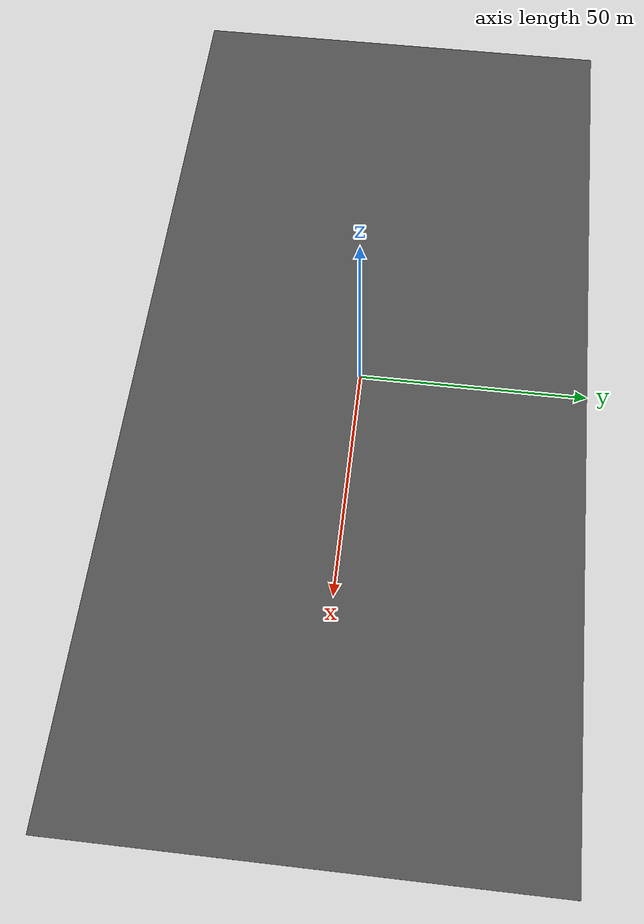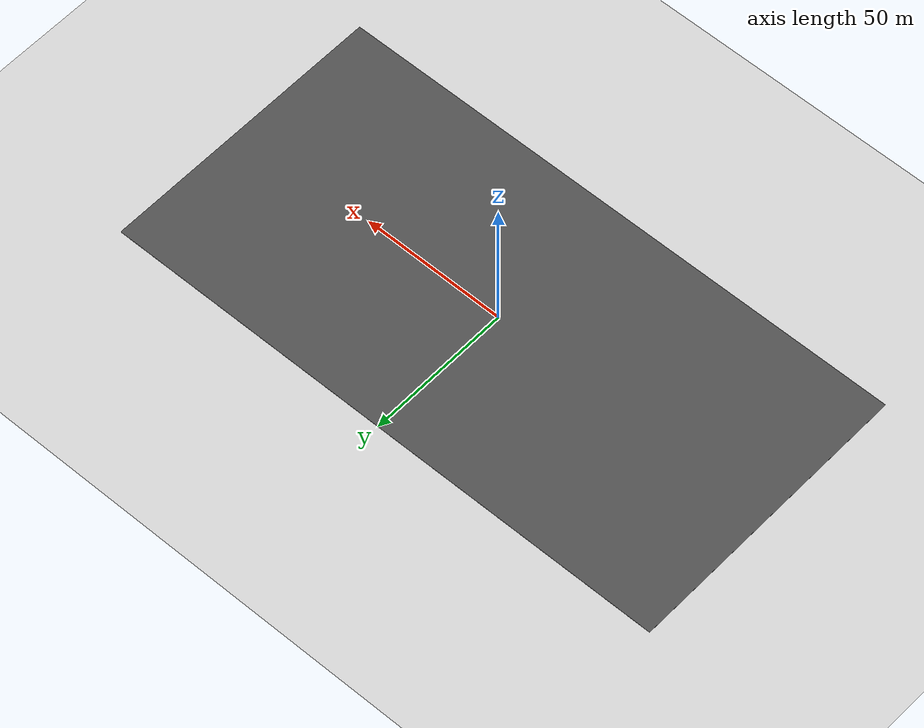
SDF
<?xml version="1.0"?>
<sdf version="1.4">
    <world name='default'>
        <model name='ground_plane'>
            <static>1</static>
            <link name='link'>
                <collision name='collision'>
                    <geometry>
                        <plane>
                            <normal>0 0 1</normal>
                            <size>200 100</size>
                        </plane>
                    </geometry>
                    <surface>
                        <friction>
                            <ode>
                                <mu>100</mu>
                                <mu2>50</mu2>
                            </ode>
                        </friction>
                        <bounce/>
                        <contact>
                            <ode/>
                        </contact>
                    </surface>
                    <max_contacts>10</max_contacts>
                </collision>
                <visual name='visual'>
                    <geometry>
                        <plane>
                            <normal>0 0 1</normal>
                            <size>200 100</size>
                        </plane>
                    </geometry>
                    <material>
                        <script>
                            <uri>file://media/materials/scripts/gazebo.material</uri>
                            <name>Gazebo/Grey</name>
                        </script>
                    </material>
                </visual>
                <velocity_decay>
                    <linear>0</linear>
                    <angular>0</angular>
                </velocity_decay>
                <self_collide>0</self_collide>
                <kinematic>0</kinematic>
                <gravity>1</gravity>
            </link>
        </model>
        <light name='sun' type='directional'>
            <cast_shadows>1</cast_shadows>
            <pose>0 0 10 0 -0 0</pose>
            <diffuse>0.8 0.8 0.8 1</diffuse>
            <specular>0.2 0.2 0.2 1</specular>
            <attenuation>
                <range>1000</range>
                <constant>0.9</constant>
                <linear>0.01</linear>
                <quadratic>0.001</quadratic>
            </attenuation>
            <direction>-0.5 0.1  -0.8</direction>
        </light>
         <gui fullscreen='0'>
               <camera name='user_camera'>
                    <pose>47.2952 -9.18432 14.3866 3.14536e-17 0.489796 2.43312</pose>
                    <view_controller>orbit</view_controller>
                </camera>
        </gui>
        <physics type='ode'>
            <max_step_size>0.001</max_step_size>
            <real_time_factor>1</real_time_factor>
            <real_time_update_rate>1000</real_time_update_rate>
            <gravity>0 0 -9.8</gravity>
        </physics>
        <scene>
            <ambient>0.4 0.4 0.4 1</ambient>
            <background>0.7 0.7 0.7 1</background>
            <shadows>1</shadows>
        </scene>
        <spherical_coordinates>
            <surface_model>EARTH_WGS84</surface_model>
            <latitude_deg>0</latitude_deg>
            <longitude_deg>0</longitude_deg>
            <elevation>0</elevation>
            <heading_deg>0</heading_deg>
        </spherical_coordinates>
        <model name='asphalt_plane_3'>
            <static>1</static>
            <link name='link'>
                <collision name='collision'>
                    <geometry>
                        <box>
                            <size>200 100 0.05</size>
                        </box>
                    </geometry>
                    <max_contacts>10</max_contacts>
                    <surface>
                        <bounce/>
                        <friction>
                            <ode/>
                        </friction>
                        <contact>
                            <ode/>
                        </contact>
                    </surface>
                </collision>
                <visual name='visual'>
                    <cast_shadows>0</cast_shadows>
                    <geometry>
                        <box>
                            <size>200 100 0.05</size>
                        </box>
                    </geometry>
                    <material>
                        <script>
                            <uri>model://asphalt_plane/materials/scripts</uri>
                            <uri>model://asphalt_plane/materials/textures</uri>
                            <name>vrc/asphalt</name>
                        </script>
                    </material>
                </visual>
                <velocity_decay>
                    <linear>0</linear>
                    <angular>0</angular>
                </velocity_decay>
                <self_collide>0</self_collide>
                <kinematic>0</kinematic>
                <gravity>1</gravity>
            </link>
            <pose>0 0 0 0 -0 0</pose>
        </model>
    </world>
</sdf>
